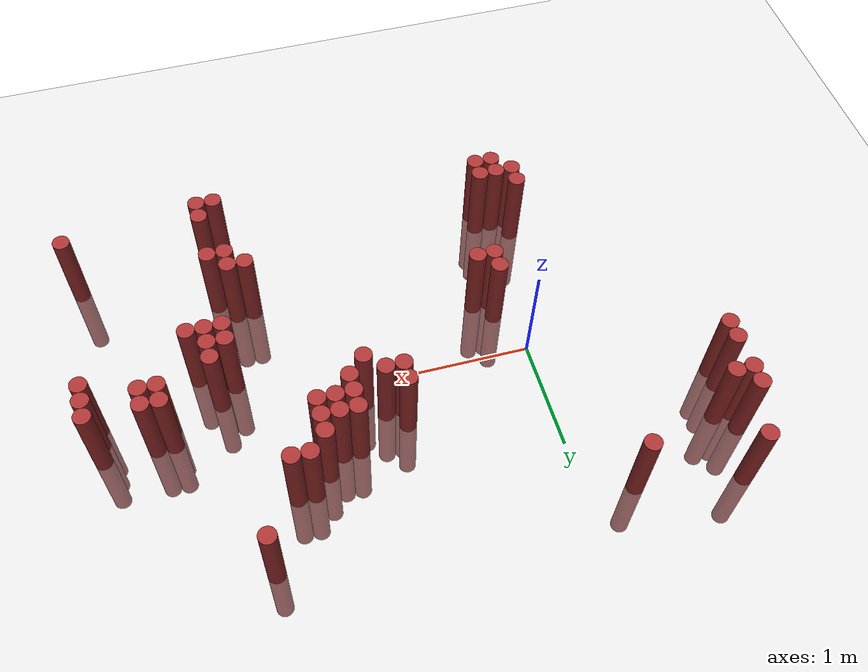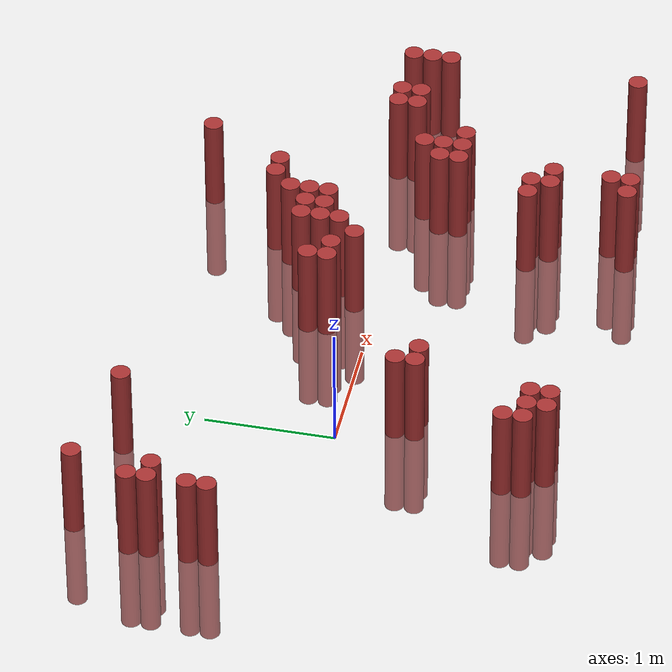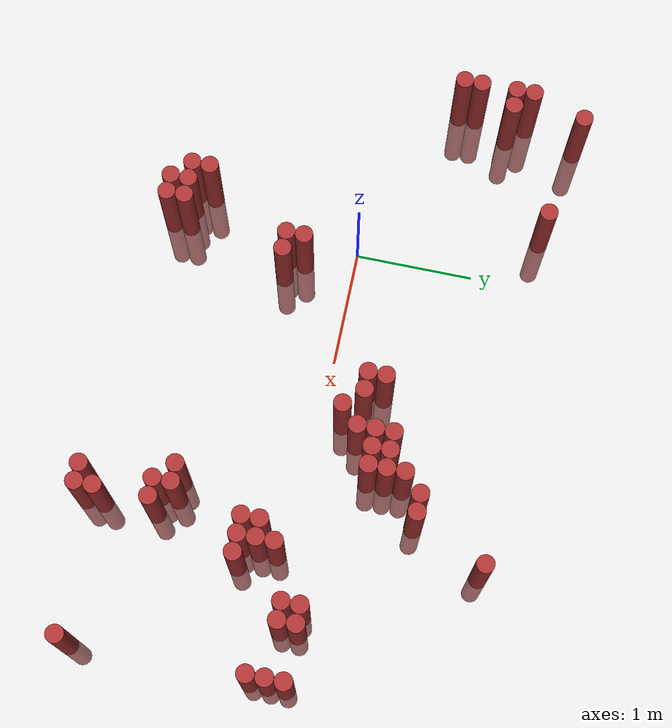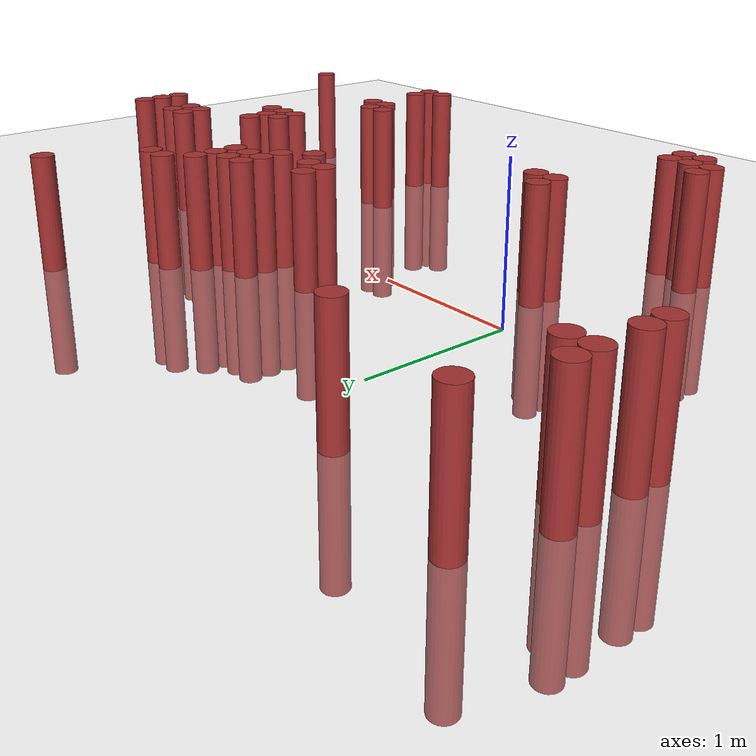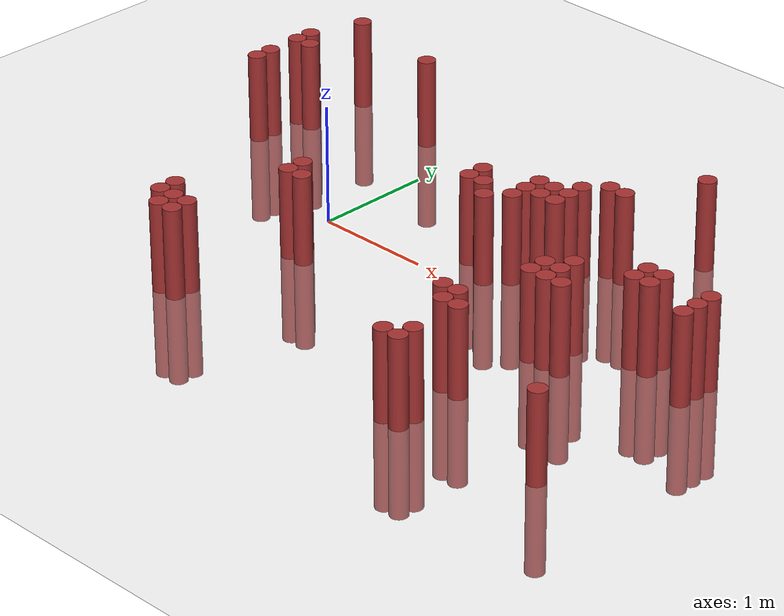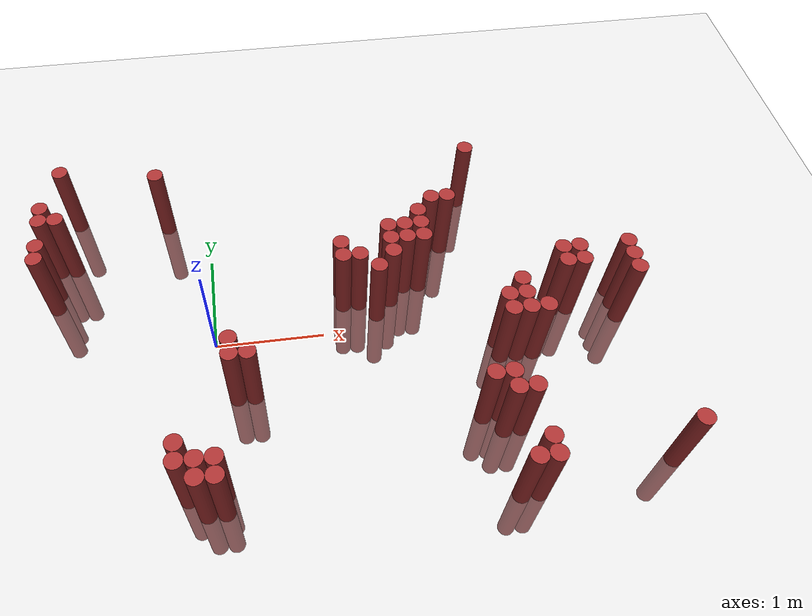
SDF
<sdf version="1.6">
 <world name="default">
  <model name="ground_plane">
   <static>1</static>
   <link name="link">
    <collision name="collision">
     <geometry><plane><normal>0 0 1</normal><size>100 100</size></plane></geometry>
     <surface><friction><ode><mu>100</mu><mu2>50</mu2></ode></friction></surface>
    </collision>
    <visual name="visual">
     <cast_shadows>0</cast_shadows>
     <geometry><plane><normal>0 0 1</normal><size>100 100</size></plane></geometry>
     <material>
      <script><uri>file://media/materials/scripts/gazebo.material</uri><name>Gazebo/Grey</name></script>
     </material>
    </visual>
   </link>
  </model>
  <model name="unit_cylinder_319">
   <static>1</static>
   <pose>-1.475000 0.625000 0.000000 0.000000 0.000000 0.000000</pose>
   <link name="link">
    <inertial>
     <mass>1</mass>
     <inertia><ixx>0.145833</ixx><ixy>0</ixy><ixz>0</ixz><iyy>0.145833</iyy><iyz>0</iyz><izz>0.125</izz></inertia>
    </inertial>
    <collision name="collision">
     <geometry><cylinder><radius>0.075000</radius><length>1.5</length></cylinder></geometry>
    </collision>
    <visual name="visual">
     <geometry><cylinder><radius>0.075000</radius><length>1.5</length></cylinder></geometry>
     <material>
      <ambient>0.648000 0.192000 0.192000 1</ambient>
      <diffuse>0.648000 0.192000 0.192000 1</diffuse>
     </material>
     <material>
      <script><name>Gazebo/Grey</name><uri>file://media/materials/scripts/gazebo.material</uri></script>
     </material>
    </visual>
   </link>
  </model>
  <model name="unit_cylinder_320">
   <static>1</static>
   <pose>-1.475000 0.775000 0.000000 0.000000 0.000000 0.000000</pose>
   <link name="link">
    <inertial>
     <mass>1</mass>
     <inertia><ixx>0.145833</ixx><ixy>0</ixy><ixz>0</ixz><iyy>0.145833</iyy><iyz>0</iyz><izz>0.125</izz></inertia>
    </inertial>
    <collision name="collision">
     <geometry><cylinder><radius>0.075000</radius><length>1.5</length></cylinder></geometry>
    </collision>
    <visual name="visual">
     <geometry><cylinder><radius>0.075000</radius><length>1.5</length></cylinder></geometry>
     <material>
      <ambient>0.648000 0.192000 0.192000 1</ambient>
      <diffuse>0.648000 0.192000 0.192000 1</diffuse>
     </material>
     <material>
      <script><name>Gazebo/Grey</name><uri>file://media/materials/scripts/gazebo.material</uri></script>
     </material>
    </visual>
   </link>
  </model>
  <model name="unit_cylinder_321">
   <static>1</static>
   <pose>-1.475000 1.075000 0.000000 0.000000 0.000000 0.000000</pose>
   <link name="link">
    <inertial>
     <mass>1</mass>
     <inertia><ixx>0.145833</ixx><ixy>0</ixy><ixz>0</ixz><iyy>0.145833</iyy><iyz>0</iyz><izz>0.125</izz></inertia>
    </inertial>
    <collision name="collision">
     <geometry><cylinder><radius>0.075000</radius><length>1.5</length></cylinder></geometry>
    </collision>
    <visual name="visual">
     <geometry><cylinder><radius>0.075000</radius><length>1.5</length></cylinder></geometry>
     <material>
      <ambient>0.648000 0.192000 0.192000 1</ambient>
      <diffuse>0.648000 0.192000 0.192000 1</diffuse>
     </material>
     <material>
      <script><name>Gazebo/Grey</name><uri>file://media/materials/scripts/gazebo.material</uri></script>
     </material>
    </visual>
   </link>
  </model>
  <model name="unit_cylinder_322">
   <static>1</static>
   <pose>-1.475000 1.225000 0.000000 0.000000 0.000000 0.000000</pose>
   <link name="link">
    <inertial>
     <mass>1</mass>
     <inertia><ixx>0.145833</ixx><ixy>0</ixy><ixz>0</ixz><iyy>0.145833</iyy><iyz>0</iyz><izz>0.125</izz></inertia>
    </inertial>
    <collision name="collision">
     <geometry><cylinder><radius>0.075000</radius><length>1.5</length></cylinder></geometry>
    </collision>
    <visual name="visual">
     <geometry><cylinder><radius>0.075000</radius><length>1.5</length></cylinder></geometry>
     <material>
      <ambient>0.648000 0.192000 0.192000 1</ambient>
      <diffuse>0.648000 0.192000 0.192000 1</diffuse>
     </material>
     <material>
      <script><name>Gazebo/Grey</name><uri>file://media/materials/scripts/gazebo.material</uri></script>
     </material>
    </visual>
   </link>
  </model>
  <model name="unit_cylinder_329">
   <static>1</static>
   <pose>-1.325000 1.075000 0.000000 0.000000 0.000000 0.000000</pose>
   <link name="link">
    <inertial>
     <mass>1</mass>
     <inertia><ixx>0.145833</ixx><ixy>0</ixy><ixz>0</ixz><iyy>0.145833</iyy><iyz>0</iyz><izz>0.125</izz></inertia>
    </inertial>
    <collision name="collision">
     <geometry><cylinder><radius>0.075000</radius><length>1.5</length></cylinder></geometry>
    </collision>
    <visual name="visual">
     <geometry><cylinder><radius>0.075000</radius><length>1.5</length></cylinder></geometry>
     <material>
      <ambient>0.648000 0.192000 0.192000 1</ambient>
      <diffuse>0.648000 0.192000 0.192000 1</diffuse>
     </material>
     <material>
      <script><name>Gazebo/Grey</name><uri>file://media/materials/scripts/gazebo.material</uri></script>
     </material>
    </visual>
   </link>
  </model>
  <model name="unit_cylinder_330">
   <static>1</static>
   <pose>-1.325000 1.675000 0.000000 0.000000 0.000000 0.000000</pose>
   <link name="link">
    <inertial>
     <mass>1</mass>
     <inertia><ixx>0.145833</ixx><ixy>0</ixy><ixz>0</ixz><iyy>0.145833</iyy><iyz>0</iyz><izz>0.125</izz></inertia>
    </inertial>
    <collision name="collision">
     <geometry><cylinder><radius>0.075000</radius><length>1.5</length></cylinder></geometry>
    </collision>
    <visual name="visual">
     <geometry><cylinder><radius>0.075000</radius><length>1.5</length></cylinder></geometry>
     <material>
      <ambient>0.648000 0.192000 0.192000 1</ambient>
      <diffuse>0.648000 0.192000 0.192000 1</diffuse>
     </material>
     <material>
      <script><name>Gazebo/Grey</name><uri>file://media/materials/scripts/gazebo.material</uri></script>
     </material>
    </visual>
   </link>
  </model>
  <model name="unit_cylinder_345">
   <static>1</static>
   <pose>-0.425000 1.525000 0.000000 0.000000 0.000000 0.000000</pose>
   <link name="link">
    <inertial>
     <mass>1</mass>
     <inertia><ixx>0.145833</ixx><ixy>0</ixy><ixz>0</ixz><iyy>0.145833</iyy><iyz>0</iyz><izz>0.125</izz></inertia>
    </inertial>
    <collision name="collision">
     <geometry><cylinder><radius>0.075000</radius><length>1.5</length></cylinder></geometry>
    </collision>
    <visual name="visual">
     <geometry><cylinder><radius>0.075000</radius><length>1.5</length></cylinder></geometry>
     <material>
      <ambient>0.648000 0.192000 0.192000 1</ambient>
      <diffuse>0.648000 0.192000 0.192000 1</diffuse>
     </material>
     <material>
      <script><name>Gazebo/Grey</name><uri>file://media/materials/scripts/gazebo.material</uri></script>
     </material>
    </visual>
   </link>
  </model>
  <model name="unit_cylinder_348">
   <static>1</static>
   <pose>-0.275000 -1.475000 0.000000 0.000000 0.000000 0.000000</pose>
   <link name="link">
    <inertial>
     <mass>1</mass>
     <inertia><ixx>0.145833</ixx><ixy>0</ixy><ixz>0</ixz><iyy>0.145833</iyy><iyz>0</iyz><izz>0.125</izz></inertia>
    </inertial>
    <collision name="collision">
     <geometry><cylinder><radius>0.075000</radius><length>1.5</length></cylinder></geometry>
    </collision>
    <visual name="visual">
     <geometry><cylinder><radius>0.075000</radius><length>1.5</length></cylinder></geometry>
     <material>
      <ambient>0.648000 0.192000 0.192000 1</ambient>
      <diffuse>0.648000 0.192000 0.192000 1</diffuse>
     </material>
     <material>
      <script><name>Gazebo/Grey</name><uri>file://media/materials/scripts/gazebo.material</uri></script>
     </material>
    </visual>
   </link>
  </model>
  <model name="unit_cylinder_349">
   <static>1</static>
   <pose>-0.275000 -1.325000 0.000000 0.000000 0.000000 0.000000</pose>
   <link name="link">
    <inertial>
     <mass>1</mass>
     <inertia><ixx>0.145833</ixx><ixy>0</ixy><ixz>0</ixz><iyy>0.145833</iyy><iyz>0</iyz><izz>0.125</izz></inertia>
    </inertial>
    <collision name="collision">
     <geometry><cylinder><radius>0.075000</radius><length>1.5</length></cylinder></geometry>
    </collision>
    <visual name="visual">
     <geometry><cylinder><radius>0.075000</radius><length>1.5</length></cylinder></geometry>
     <material>
      <ambient>0.648000 0.192000 0.192000 1</ambient>
      <diffuse>0.648000 0.192000 0.192000 1</diffuse>
     </material>
     <material>
      <script><name>Gazebo/Grey</name><uri>file://media/materials/scripts/gazebo.material</uri></script>
     </material>
    </visual>
   </link>
  </model>
  <model name="unit_cylinder_352">
   <static>1</static>
   <pose>-0.125000 -1.625000 0.000000 0.000000 0.000000 0.000000</pose>
   <link name="link">
    <inertial>
     <mass>1</mass>
     <inertia><ixx>0.145833</ixx><ixy>0</ixy><ixz>0</ixz><iyy>0.145833</iyy><iyz>0</iyz><izz>0.125</izz></inertia>
    </inertial>
    <collision name="collision">
     <geometry><cylinder><radius>0.075000</radius><length>1.5</length></cylinder></geometry>
    </collision>
    <visual name="visual">
     <geometry><cylinder><radius>0.075000</radius><length>1.5</length></cylinder></geometry>
     <material>
      <ambient>0.648000 0.192000 0.192000 1</ambient>
      <diffuse>0.648000 0.192000 0.192000 1</diffuse>
     </material>
     <material>
      <script><name>Gazebo/Grey</name><uri>file://media/materials/scripts/gazebo.material</uri></script>
     </material>
    </visual>
   </link>
  </model>
  <model name="unit_cylinder_353">
   <static>1</static>
   <pose>-0.125000 -1.475000 0.000000 0.000000 0.000000 0.000000</pose>
   <link name="link">
    <inertial>
     <mass>1</mass>
     <inertia><ixx>0.145833</ixx><ixy>0</ixy><ixz>0</ixz><iyy>0.145833</iyy><iyz>0</iyz><izz>0.125</izz></inertia>
    </inertial>
    <collision name="collision">
     <geometry><cylinder><radius>0.075000</radius><length>1.5</length></cylinder></geometry>
    </collision>
    <visual name="visual">
     <geometry><cylinder><radius>0.075000</radius><length>1.5</length></cylinder></geometry>
     <material>
      <ambient>0.648000 0.192000 0.192000 1</ambient>
      <diffuse>0.648000 0.192000 0.192000 1</diffuse>
     </material>
     <material>
      <script><name>Gazebo/Grey</name><uri>file://media/materials/scripts/gazebo.material</uri></script>
     </material>
    </visual>
   </link>
  </model>
  <model name="unit_cylinder_359">
   <static>1</static>
   <pose>0.025000 -1.625000 0.000000 0.000000 0.000000 0.000000</pose>
   <link name="link">
    <inertial>
     <mass>1</mass>
     <inertia><ixx>0.145833</ixx><ixy>0</ixy><ixz>0</ixz><iyy>0.145833</iyy><iyz>0</iyz><izz>0.125</izz></inertia>
    </inertial>
    <collision name="collision">
     <geometry><cylinder><radius>0.075000</radius><length>1.5</length></cylinder></geometry>
    </collision>
    <visual name="visual">
     <geometry><cylinder><radius>0.075000</radius><length>1.5</length></cylinder></geometry>
     <material>
      <ambient>0.648000 0.192000 0.192000 1</ambient>
      <diffuse>0.648000 0.192000 0.192000 1</diffuse>
     </material>
     <material>
      <script><name>Gazebo/Grey</name><uri>file://media/materials/scripts/gazebo.material</uri></script>
     </material>
    </visual>
   </link>
  </model>
  <model name="unit_cylinder_360">
   <static>1</static>
   <pose>0.025000 -1.475000 0.000000 0.000000 0.000000 0.000000</pose>
   <link name="link">
    <inertial>
     <mass>1</mass>
     <inertia><ixx>0.145833</ixx><ixy>0</ixy><ixz>0</ixz><iyy>0.145833</iyy><iyz>0</iyz><izz>0.125</izz></inertia>
    </inertial>
    <collision name="collision">
     <geometry><cylinder><radius>0.075000</radius><length>1.5</length></cylinder></geometry>
    </collision>
    <visual name="visual">
     <geometry><cylinder><radius>0.075000</radius><length>1.5</length></cylinder></geometry>
     <material>
      <ambient>0.648000 0.192000 0.192000 1</ambient>
      <diffuse>0.648000 0.192000 0.192000 1</diffuse>
     </material>
     <material>
      <script><name>Gazebo/Grey</name><uri>file://media/materials/scripts/gazebo.material</uri></script>
     </material>
    </visual>
   </link>
  </model>
  <model name="unit_cylinder_367">
   <static>1</static>
   <pose>0.175000 -0.575000 0.000000 0.000000 0.000000 0.000000</pose>
   <link name="link">
    <inertial>
     <mass>1</mass>
     <inertia><ixx>0.145833</ixx><ixy>0</ixy><ixz>0</ixz><iyy>0.145833</iyy><iyz>0</iyz><izz>0.125</izz></inertia>
    </inertial>
    <collision name="collision">
     <geometry><cylinder><radius>0.075000</radius><length>1.5</length></cylinder></geometry>
    </collision>
    <visual name="visual">
     <geometry><cylinder><radius>0.075000</radius><length>1.5</length></cylinder></geometry>
     <material>
      <ambient>0.648000 0.192000 0.192000 1</ambient>
      <diffuse>0.648000 0.192000 0.192000 1</diffuse>
     </material>
     <material>
      <script><name>Gazebo/Grey</name><uri>file://media/materials/scripts/gazebo.material</uri></script>
     </material>
    </visual>
   </link>
  </model>
  <model name="unit_cylinder_368">
   <static>1</static>
   <pose>0.175000 -0.425000 0.000000 0.000000 0.000000 0.000000</pose>
   <link name="link">
    <inertial>
     <mass>1</mass>
     <inertia><ixx>0.145833</ixx><ixy>0</ixy><ixz>0</ixz><iyy>0.145833</iyy><iyz>0</iyz><izz>0.125</izz></inertia>
    </inertial>
    <collision name="collision">
     <geometry><cylinder><radius>0.075000</radius><length>1.5</length></cylinder></geometry>
    </collision>
    <visual name="visual">
     <geometry><cylinder><radius>0.075000</radius><length>1.5</length></cylinder></geometry>
     <material>
      <ambient>0.648000 0.192000 0.192000 1</ambient>
      <diffuse>0.648000 0.192000 0.192000 1</diffuse>
     </material>
     <material>
      <script><name>Gazebo/Grey</name><uri>file://media/materials/scripts/gazebo.material</uri></script>
     </material>
    </visual>
   </link>
  </model>
  <model name="unit_cylinder_374">
   <static>1</static>
   <pose>0.325000 -0.575000 0.000000 0.000000 0.000000 0.000000</pose>
   <link name="link">
    <inertial>
     <mass>1</mass>
     <inertia><ixx>0.145833</ixx><ixy>0</ixy><ixz>0</ixz><iyy>0.145833</iyy><iyz>0</iyz><izz>0.125</izz></inertia>
    </inertial>
    <collision name="collision">
     <geometry><cylinder><radius>0.075000</radius><length>1.5</length></cylinder></geometry>
    </collision>
    <visual name="visual">
     <geometry><cylinder><radius>0.075000</radius><length>1.5</length></cylinder></geometry>
     <material>
      <ambient>0.648000 0.192000 0.192000 1</ambient>
      <diffuse>0.648000 0.192000 0.192000 1</diffuse>
     </material>
     <material>
      <script><name>Gazebo/Grey</name><uri>file://media/materials/scripts/gazebo.material</uri></script>
     </material>
    </visual>
   </link>
  </model>
  <model name="unit_cylinder_382">
   <static>1</static>
   <pose>1.225000 0.325000 0.000000 0.000000 0.000000 0.000000</pose>
   <link name="link">
    <inertial>
     <mass>1</mass>
     <inertia><ixx>0.145833</ixx><ixy>0</ixy><ixz>0</ixz><iyy>0.145833</iyy><iyz>0</iyz><izz>0.125</izz></inertia>
    </inertial>
    <collision name="collision">
     <geometry><cylinder><radius>0.075000</radius><length>1.5</length></cylinder></geometry>
    </collision>
    <visual name="visual">
     <geometry><cylinder><radius>0.075000</radius><length>1.5</length></cylinder></geometry>
     <material>
      <ambient>0.648000 0.192000 0.192000 1</ambient>
      <diffuse>0.648000 0.192000 0.192000 1</diffuse>
     </material>
     <material>
      <script><name>Gazebo/Grey</name><uri>file://media/materials/scripts/gazebo.material</uri></script>
     </material>
    </visual>
   </link>
  </model>
  <model name="unit_cylinder_383">
   <static>1</static>
   <pose>1.225000 0.475000 0.000000 0.000000 0.000000 0.000000</pose>
   <link name="link">
    <inertial>
     <mass>1</mass>
     <inertia><ixx>0.145833</ixx><ixy>0</ixy><ixz>0</ixz><iyy>0.145833</iyy><iyz>0</iyz><izz>0.125</izz></inertia>
    </inertial>
    <collision name="collision">
     <geometry><cylinder><radius>0.075000</radius><length>1.5</length></cylinder></geometry>
    </collision>
    <visual name="visual">
     <geometry><cylinder><radius>0.075000</radius><length>1.5</length></cylinder></geometry>
     <material>
      <ambient>0.648000 0.192000 0.192000 1</ambient>
      <diffuse>0.648000 0.192000 0.192000 1</diffuse>
     </material>
     <material>
      <script><name>Gazebo/Grey</name><uri>file://media/materials/scripts/gazebo.material</uri></script>
     </material>
    </visual>
   </link>
  </model>
  <model name="unit_cylinder_386">
   <static>1</static>
   <pose>1.375000 0.325000 0.000000 0.000000 0.000000 0.000000</pose>
   <link name="link">
    <inertial>
     <mass>1</mass>
     <inertia><ixx>0.145833</ixx><ixy>0</ixy><ixz>0</ixz><iyy>0.145833</iyy><iyz>0</iyz><izz>0.125</izz></inertia>
    </inertial>
    <collision name="collision">
     <geometry><cylinder><radius>0.075000</radius><length>1.5</length></cylinder></geometry>
    </collision>
    <visual name="visual">
     <geometry><cylinder><radius>0.075000</radius><length>1.5</length></cylinder></geometry>
     <material>
      <ambient>0.648000 0.192000 0.192000 1</ambient>
      <diffuse>0.648000 0.192000 0.192000 1</diffuse>
     </material>
     <material>
      <script><name>Gazebo/Grey</name><uri>file://media/materials/scripts/gazebo.material</uri></script>
     </material>
    </visual>
   </link>
  </model>
  <model name="unit_cylinder_388">
   <static>1</static>
   <pose>1.525000 0.175000 0.000000 0.000000 0.000000 0.000000</pose>
   <link name="link">
    <inertial>
     <mass>1</mass>
     <inertia><ixx>0.145833</ixx><ixy>0</ixy><ixz>0</ixz><iyy>0.145833</iyy><iyz>0</iyz><izz>0.125</izz></inertia>
    </inertial>
    <collision name="collision">
     <geometry><cylinder><radius>0.075000</radius><length>1.5</length></cylinder></geometry>
    </collision>
    <visual name="visual">
     <geometry><cylinder><radius>0.075000</radius><length>1.5</length></cylinder></geometry>
     <material>
      <ambient>0.648000 0.192000 0.192000 1</ambient>
      <diffuse>0.648000 0.192000 0.192000 1</diffuse>
     </material>
     <material>
      <script><name>Gazebo/Grey</name><uri>file://media/materials/scripts/gazebo.material</uri></script>
     </material>
    </visual>
   </link>
  </model>
  <model name="unit_cylinder_389">
   <static>1</static>
   <pose>1.675000 0.325000 0.000000 0.000000 0.000000 0.000000</pose>
   <link name="link">
    <inertial>
     <mass>1</mass>
     <inertia><ixx>0.145833</ixx><ixy>0</ixy><ixz>0</ixz><iyy>0.145833</iyy><iyz>0</iyz><izz>0.125</izz></inertia>
    </inertial>
    <collision name="collision">
     <geometry><cylinder><radius>0.075000</radius><length>1.5</length></cylinder></geometry>
    </collision>
    <visual name="visual">
     <geometry><cylinder><radius>0.075000</radius><length>1.5</length></cylinder></geometry>
     <material>
      <ambient>0.648000 0.192000 0.192000 1</ambient>
      <diffuse>0.648000 0.192000 0.192000 1</diffuse>
     </material>
     <material>
      <script><name>Gazebo/Grey</name><uri>file://media/materials/scripts/gazebo.material</uri></script>
     </material>
    </visual>
   </link>
  </model>
  <model name="unit_cylinder_390">
   <static>1</static>
   <pose>1.675000 0.475000 0.000000 0.000000 0.000000 0.000000</pose>
   <link name="link">
    <inertial>
     <mass>1</mass>
     <inertia><ixx>0.145833</ixx><ixy>0</ixy><ixz>0</ixz><iyy>0.145833</iyy><iyz>0</iyz><izz>0.125</izz></inertia>
    </inertial>
    <collision name="collision">
     <geometry><cylinder><radius>0.075000</radius><length>1.5</length></cylinder></geometry>
    </collision>
    <visual name="visual">
     <geometry><cylinder><radius>0.075000</radius><length>1.5</length></cylinder></geometry>
     <material>
      <ambient>0.648000 0.192000 0.192000 1</ambient>
      <diffuse>0.648000 0.192000 0.192000 1</diffuse>
     </material>
     <material>
      <script><name>Gazebo/Grey</name><uri>file://media/materials/scripts/gazebo.material</uri></script>
     </material>
    </visual>
   </link>
  </model>
  <model name="unit_cylinder_391">
   <static>1</static>
   <pose>1.675000 0.625000 0.000000 0.000000 0.000000 0.000000</pose>
   <link name="link">
    <inertial>
     <mass>1</mass>
     <inertia><ixx>0.145833</ixx><ixy>0</ixy><ixz>0</ixz><iyy>0.145833</iyy><iyz>0</iyz><izz>0.125</izz></inertia>
    </inertial>
    <collision name="collision">
     <geometry><cylinder><radius>0.075000</radius><length>1.5</length></cylinder></geometry>
    </collision>
    <visual name="visual">
     <geometry><cylinder><radius>0.075000</radius><length>1.5</length></cylinder></geometry>
     <material>
      <ambient>0.648000 0.192000 0.192000 1</ambient>
      <diffuse>0.648000 0.192000 0.192000 1</diffuse>
     </material>
     <material>
      <script><name>Gazebo/Grey</name><uri>file://media/materials/scripts/gazebo.material</uri></script>
     </material>
    </visual>
   </link>
  </model>
  <model name="unit_cylinder_394">
   <static>1</static>
   <pose>1.825000 0.475000 0.000000 0.000000 0.000000 0.000000</pose>
   <link name="link">
    <inertial>
     <mass>1</mass>
     <inertia><ixx>0.145833</ixx><ixy>0</ixy><ixz>0</ixz><iyy>0.145833</iyy><iyz>0</iyz><izz>0.125</izz></inertia>
    </inertial>
    <collision name="collision">
     <geometry><cylinder><radius>0.075000</radius><length>1.5</length></cylinder></geometry>
    </collision>
    <visual name="visual">
     <geometry><cylinder><radius>0.075000</radius><length>1.5</length></cylinder></geometry>
     <material>
      <ambient>0.648000 0.192000 0.192000 1</ambient>
      <diffuse>0.648000 0.192000 0.192000 1</diffuse>
     </material>
     <material>
      <script><name>Gazebo/Grey</name><uri>file://media/materials/scripts/gazebo.material</uri></script>
     </material>
    </visual>
   </link>
  </model>
  <model name="unit_cylinder_395">
   <static>1</static>
   <pose>1.825000 0.625000 0.000000 0.000000 0.000000 0.000000</pose>
   <link name="link">
    <inertial>
     <mass>1</mass>
     <inertia><ixx>0.145833</ixx><ixy>0</ixy><ixz>0</ixz><iyy>0.145833</iyy><iyz>0</iyz><izz>0.125</izz></inertia>
    </inertial>
    <collision name="collision">
     <geometry><cylinder><radius>0.075000</radius><length>1.5</length></cylinder></geometry>
    </collision>
    <visual name="visual">
     <geometry><cylinder><radius>0.075000</radius><length>1.5</length></cylinder></geometry>
     <material>
      <ambient>0.648000 0.192000 0.192000 1</ambient>
      <diffuse>0.648000 0.192000 0.192000 1</diffuse>
     </material>
     <material>
      <script><name>Gazebo/Grey</name><uri>file://media/materials/scripts/gazebo.material</uri></script>
     </material>
    </visual>
   </link>
  </model>
  <model name="unit_cylinder_398">
   <static>1</static>
   <pose>1.975000 0.475000 0.000000 0.000000 0.000000 0.000000</pose>
   <link name="link">
    <inertial>
     <mass>1</mass>
     <inertia><ixx>0.145833</ixx><ixy>0</ixy><ixz>0</ixz><iyy>0.145833</iyy><iyz>0</iyz><izz>0.125</izz></inertia>
    </inertial>
    <collision name="collision">
     <geometry><cylinder><radius>0.075000</radius><length>1.5</length></cylinder></geometry>
    </collision>
    <visual name="visual">
     <geometry><cylinder><radius>0.075000</radius><length>1.5</length></cylinder></geometry>
     <material>
      <ambient>0.648000 0.192000 0.192000 1</ambient>
      <diffuse>0.648000 0.192000 0.192000 1</diffuse>
     </material>
     <material>
      <script><name>Gazebo/Grey</name><uri>file://media/materials/scripts/gazebo.material</uri></script>
     </material>
    </visual>
   </link>
  </model>
  <model name="unit_cylinder_399">
   <static>1</static>
   <pose>1.975000 0.625000 0.000000 0.000000 0.000000 0.000000</pose>
   <link name="link">
    <inertial>
     <mass>1</mass>
     <inertia><ixx>0.145833</ixx><ixy>0</ixy><ixz>0</ixz><iyy>0.145833</iyy><iyz>0</iyz><izz>0.125</izz></inertia>
    </inertial>
    <collision name="collision">
     <geometry><cylinder><radius>0.075000</radius><length>1.5</length></cylinder></geometry>
    </collision>
    <visual name="visual">
     <geometry><cylinder><radius>0.075000</radius><length>1.5</length></cylinder></geometry>
     <material>
      <ambient>0.648000 0.192000 0.192000 1</ambient>
      <diffuse>0.648000 0.192000 0.192000 1</diffuse>
     </material>
     <material>
      <script><name>Gazebo/Grey</name><uri>file://media/materials/scripts/gazebo.material</uri></script>
     </material>
    </visual>
   </link>
  </model>
  <model name="unit_cylinder_400">
   <static>1</static>
   <pose>1.975000 0.775000 0.000000 0.000000 0.000000 0.000000</pose>
   <link name="link">
    <inertial>
     <mass>1</mass>
     <inertia><ixx>0.145833</ixx><ixy>0</ixy><ixz>0</ixz><iyy>0.145833</iyy><iyz>0</iyz><izz>0.125</izz></inertia>
    </inertial>
    <collision name="collision">
     <geometry><cylinder><radius>0.075000</radius><length>1.5</length></cylinder></geometry>
    </collision>
    <visual name="visual">
     <geometry><cylinder><radius>0.075000</radius><length>1.5</length></cylinder></geometry>
     <material>
      <ambient>0.648000 0.192000 0.192000 1</ambient>
      <diffuse>0.648000 0.192000 0.192000 1</diffuse>
     </material>
     <material>
      <script><name>Gazebo/Grey</name><uri>file://media/materials/scripts/gazebo.material</uri></script>
     </material>
    </visual>
   </link>
  </model>
  <model name="unit_cylinder_403">
   <static>1</static>
   <pose>2.125000 0.925000 0.000000 0.000000 0.000000 0.000000</pose>
   <link name="link">
    <inertial>
     <mass>1</mass>
     <inertia><ixx>0.145833</ixx><ixy>0</ixy><ixz>0</ixz><iyy>0.145833</iyy><iyz>0</iyz><izz>0.125</izz></inertia>
    </inertial>
    <collision name="collision">
     <geometry><cylinder><radius>0.075000</radius><length>1.5</length></cylinder></geometry>
    </collision>
    <visual name="visual">
     <geometry><cylinder><radius>0.075000</radius><length>1.5</length></cylinder></geometry>
     <material>
      <ambient>0.648000 0.192000 0.192000 1</ambient>
      <diffuse>0.648000 0.192000 0.192000 1</diffuse>
     </material>
     <material>
      <script><name>Gazebo/Grey</name><uri>file://media/materials/scripts/gazebo.material</uri></script>
     </material>
    </visual>
   </link>
  </model>
  <model name="unit_cylinder_405">
   <static>1</static>
   <pose>2.275000 -1.025000 0.000000 0.000000 0.000000 0.000000</pose>
   <link name="link">
    <inertial>
     <mass>1</mass>
     <inertia><ixx>0.145833</ixx><ixy>0</ixy><ixz>0</ixz><iyy>0.145833</iyy><iyz>0</iyz><izz>0.125</izz></inertia>
    </inertial>
    <collision name="collision">
     <geometry><cylinder><radius>0.075000</radius><length>1.5</length></cylinder></geometry>
    </collision>
    <visual name="visual">
     <geometry><cylinder><radius>0.075000</radius><length>1.5</length></cylinder></geometry>
     <material>
      <ambient>0.648000 0.192000 0.192000 1</ambient>
      <diffuse>0.648000 0.192000 0.192000 1</diffuse>
     </material>
     <material>
      <script><name>Gazebo/Grey</name><uri>file://media/materials/scripts/gazebo.material</uri></script>
     </material>
    </visual>
   </link>
  </model>
  <model name="unit_cylinder_406">
   <static>1</static>
   <pose>2.275000 0.925000 0.000000 0.000000 0.000000 0.000000</pose>
   <link name="link">
    <inertial>
     <mass>1</mass>
     <inertia><ixx>0.145833</ixx><ixy>0</ixy><ixz>0</ixz><iyy>0.145833</iyy><iyz>0</iyz><izz>0.125</izz></inertia>
    </inertial>
    <collision name="collision">
     <geometry><cylinder><radius>0.075000</radius><length>1.5</length></cylinder></geometry>
    </collision>
    <visual name="visual">
     <geometry><cylinder><radius>0.075000</radius><length>1.5</length></cylinder></geometry>
     <material>
      <ambient>0.648000 0.192000 0.192000 1</ambient>
      <diffuse>0.648000 0.192000 0.192000 1</diffuse>
     </material>
     <material>
      <script><name>Gazebo/Grey</name><uri>file://media/materials/scripts/gazebo.material</uri></script>
     </material>
    </visual>
   </link>
  </model>
  <model name="unit_cylinder_407">
   <static>1</static>
   <pose>2.425000 -1.775000 0.000000 0.000000 0.000000 0.000000</pose>
   <link name="link">
    <inertial>
     <mass>1</mass>
     <inertia><ixx>0.145833</ixx><ixy>0</ixy><ixz>0</ixz><iyy>0.145833</iyy><iyz>0</iyz><izz>0.125</izz></inertia>
    </inertial>
    <collision name="collision">
     <geometry><cylinder><radius>0.075000</radius><length>1.5</length></cylinder></geometry>
    </collision>
    <visual name="visual">
     <geometry><cylinder><radius>0.075000</radius><length>1.5</length></cylinder></geometry>
     <material>
      <ambient>0.648000 0.192000 0.192000 1</ambient>
      <diffuse>0.648000 0.192000 0.192000 1</diffuse>
     </material>
     <material>
      <script><name>Gazebo/Grey</name><uri>file://media/materials/scripts/gazebo.material</uri></script>
     </material>
    </visual>
   </link>
  </model>
  <model name="unit_cylinder_408">
   <static>1</static>
   <pose>2.425000 -1.175000 0.000000 0.000000 0.000000 0.000000</pose>
   <link name="link">
    <inertial>
     <mass>1</mass>
     <inertia><ixx>0.145833</ixx><ixy>0</ixy><ixz>0</ixz><iyy>0.145833</iyy><iyz>0</iyz><izz>0.125</izz></inertia>
    </inertial>
    <collision name="collision">
     <geometry><cylinder><radius>0.075000</radius><length>1.5</length></cylinder></geometry>
    </collision>
    <visual name="visual">
     <geometry><cylinder><radius>0.075000</radius><length>1.5</length></cylinder></geometry>
     <material>
      <ambient>0.648000 0.192000 0.192000 1</ambient>
      <diffuse>0.648000 0.192000 0.192000 1</diffuse>
     </material>
     <material>
      <script><name>Gazebo/Grey</name><uri>file://media/materials/scripts/gazebo.material</uri></script>
     </material>
    </visual>
   </link>
  </model>
  <model name="unit_cylinder_409">
   <static>1</static>
   <pose>2.425000 -1.025000 0.000000 0.000000 0.000000 0.000000</pose>
   <link name="link">
    <inertial>
     <mass>1</mass>
     <inertia><ixx>0.145833</ixx><ixy>0</ixy><ixz>0</ixz><iyy>0.145833</iyy><iyz>0</iyz><izz>0.125</izz></inertia>
    </inertial>
    <collision name="collision">
     <geometry><cylinder><radius>0.075000</radius><length>1.5</length></cylinder></geometry>
    </collision>
    <visual name="visual">
     <geometry><cylinder><radius>0.075000</radius><length>1.5</length></cylinder></geometry>
     <material>
      <ambient>0.648000 0.192000 0.192000 1</ambient>
      <diffuse>0.648000 0.192000 0.192000 1</diffuse>
     </material>
     <material>
      <script><name>Gazebo/Grey</name><uri>file://media/materials/scripts/gazebo.material</uri></script>
     </material>
    </visual>
   </link>
  </model>
  <model name="unit_cylinder_412">
   <static>1</static>
   <pose>2.575000 -1.775000 0.000000 0.000000 0.000000 0.000000</pose>
   <link name="link">
    <inertial>
     <mass>1</mass>
     <inertia><ixx>0.145833</ixx><ixy>0</ixy><ixz>0</ixz><iyy>0.145833</iyy><iyz>0</iyz><izz>0.125</izz></inertia>
    </inertial>
    <collision name="collision">
     <geometry><cylinder><radius>0.075000</radius><length>1.5</length></cylinder></geometry>
    </collision>
    <visual name="visual">
     <geometry><cylinder><radius>0.075000</radius><length>1.5</length></cylinder></geometry>
     <material>
      <ambient>0.648000 0.192000 0.192000 1</ambient>
      <diffuse>0.648000 0.192000 0.192000 1</diffuse>
     </material>
     <material>
      <script><name>Gazebo/Grey</name><uri>file://media/materials/scripts/gazebo.material</uri></script>
     </material>
    </visual>
   </link>
  </model>
  <model name="unit_cylinder_413">
   <static>1</static>
   <pose>2.575000 -1.625000 0.000000 0.000000 0.000000 0.000000</pose>
   <link name="link">
    <inertial>
     <mass>1</mass>
     <inertia><ixx>0.145833</ixx><ixy>0</ixy><ixz>0</ixz><iyy>0.145833</iyy><iyz>0</iyz><izz>0.125</izz></inertia>
    </inertial>
    <collision name="collision">
     <geometry><cylinder><radius>0.075000</radius><length>1.5</length></cylinder></geometry>
    </collision>
    <visual name="visual">
     <geometry><cylinder><radius>0.075000</radius><length>1.5</length></cylinder></geometry>
     <material>
      <ambient>0.648000 0.192000 0.192000 1</ambient>
      <diffuse>0.648000 0.192000 0.192000 1</diffuse>
     </material>
     <material>
      <script><name>Gazebo/Grey</name><uri>file://media/materials/scripts/gazebo.material</uri></script>
     </material>
    </visual>
   </link>
  </model>
  <model name="unit_cylinder_414">
   <static>1</static>
   <pose>2.575000 -1.175000 0.000000 0.000000 0.000000 0.000000</pose>
   <link name="link">
    <inertial>
     <mass>1</mass>
     <inertia><ixx>0.145833</ixx><ixy>0</ixy><ixz>0</ixz><iyy>0.145833</iyy><iyz>0</iyz><izz>0.125</izz></inertia>
    </inertial>
    <collision name="collision">
     <geometry><cylinder><radius>0.075000</radius><length>1.5</length></cylinder></geometry>
    </collision>
    <visual name="visual">
     <geometry><cylinder><radius>0.075000</radius><length>1.5</length></cylinder></geometry>
     <material>
      <ambient>0.648000 0.192000 0.192000 1</ambient>
      <diffuse>0.648000 0.192000 0.192000 1</diffuse>
     </material>
     <material>
      <script><name>Gazebo/Grey</name><uri>file://media/materials/scripts/gazebo.material</uri></script>
     </material>
    </visual>
   </link>
  </model>
  <model name="unit_cylinder_415">
   <static>1</static>
   <pose>2.575000 -0.425000 0.000000 0.000000 0.000000 0.000000</pose>
   <link name="link">
    <inertial>
     <mass>1</mass>
     <inertia><ixx>0.145833</ixx><ixy>0</ixy><ixz>0</ixz><iyy>0.145833</iyy><iyz>0</iyz><izz>0.125</izz></inertia>
    </inertial>
    <collision name="collision">
     <geometry><cylinder><radius>0.075000</radius><length>1.5</length></cylinder></geometry>
    </collision>
    <visual name="visual">
     <geometry><cylinder><radius>0.075000</radius><length>1.5</length></cylinder></geometry>
     <material>
      <ambient>0.648000 0.192000 0.192000 1</ambient>
      <diffuse>0.648000 0.192000 0.192000 1</diffuse>
     </material>
     <material>
      <script><name>Gazebo/Grey</name><uri>file://media/materials/scripts/gazebo.material</uri></script>
     </material>
    </visual>
   </link>
  </model>
  <model name="unit_cylinder_416">
   <static>1</static>
   <pose>2.575000 -0.275000 0.000000 0.000000 0.000000 0.000000</pose>
   <link name="link">
    <inertial>
     <mass>1</mass>
     <inertia><ixx>0.145833</ixx><ixy>0</ixy><ixz>0</ixz><iyy>0.145833</iyy><iyz>0</iyz><izz>0.125</izz></inertia>
    </inertial>
    <collision name="collision">
     <geometry><cylinder><radius>0.075000</radius><length>1.5</length></cylinder></geometry>
    </collision>
    <visual name="visual">
     <geometry><cylinder><radius>0.075000</radius><length>1.5</length></cylinder></geometry>
     <material>
      <ambient>0.648000 0.192000 0.192000 1</ambient>
      <diffuse>0.648000 0.192000 0.192000 1</diffuse>
     </material>
     <material>
      <script><name>Gazebo/Grey</name><uri>file://media/materials/scripts/gazebo.material</uri></script>
     </material>
    </visual>
   </link>
  </model>
  <model name="unit_cylinder_417">
   <static>1</static>
   <pose>2.575000 1.525000 0.000000 0.000000 0.000000 0.000000</pose>
   <link name="link">
    <inertial>
     <mass>1</mass>
     <inertia><ixx>0.145833</ixx><ixy>0</ixy><ixz>0</ixz><iyy>0.145833</iyy><iyz>0</iyz><izz>0.125</izz></inertia>
    </inertial>
    <collision name="collision">
     <geometry><cylinder><radius>0.075000</radius><length>1.5</length></cylinder></geometry>
    </collision>
    <visual name="visual">
     <geometry><cylinder><radius>0.075000</radius><length>1.5</length></cylinder></geometry>
     <material>
      <ambient>0.648000 0.192000 0.192000 1</ambient>
      <diffuse>0.648000 0.192000 0.192000 1</diffuse>
     </material>
     <material>
      <script><name>Gazebo/Grey</name><uri>file://media/materials/scripts/gazebo.material</uri></script>
     </material>
    </visual>
   </link>
  </model>
  <model name="unit_cylinder_422">
   <static>1</static>
   <pose>2.725000 -0.425000 0.000000 0.000000 0.000000 0.000000</pose>
   <link name="link">
    <inertial>
     <mass>1</mass>
     <inertia><ixx>0.145833</ixx><ixy>0</ixy><ixz>0</ixz><iyy>0.145833</iyy><iyz>0</iyz><izz>0.125</izz></inertia>
    </inertial>
    <collision name="collision">
     <geometry><cylinder><radius>0.075000</radius><length>1.5</length></cylinder></geometry>
    </collision>
    <visual name="visual">
     <geometry><cylinder><radius>0.075000</radius><length>1.5</length></cylinder></geometry>
     <material>
      <ambient>0.648000 0.192000 0.192000 1</ambient>
      <diffuse>0.648000 0.192000 0.192000 1</diffuse>
     </material>
     <material>
      <script><name>Gazebo/Grey</name><uri>file://media/materials/scripts/gazebo.material</uri></script>
     </material>
    </visual>
   </link>
  </model>
  <model name="unit_cylinder_423">
   <static>1</static>
   <pose>2.725000 -0.275000 0.000000 0.000000 0.000000 0.000000</pose>
   <link name="link">
    <inertial>
     <mass>1</mass>
     <inertia><ixx>0.145833</ixx><ixy>0</ixy><ixz>0</ixz><iyy>0.145833</iyy><iyz>0</iyz><izz>0.125</izz></inertia>
    </inertial>
    <collision name="collision">
     <geometry><cylinder><radius>0.075000</radius><length>1.5</length></cylinder></geometry>
    </collision>
    <visual name="visual">
     <geometry><cylinder><radius>0.075000</radius><length>1.5</length></cylinder></geometry>
     <material>
      <ambient>0.648000 0.192000 0.192000 1</ambient>
      <diffuse>0.648000 0.192000 0.192000 1</diffuse>
     </material>
     <material>
      <script><name>Gazebo/Grey</name><uri>file://media/materials/scripts/gazebo.material</uri></script>
     </material>
    </visual>
   </link>
  </model>
  <model name="unit_cylinder_424">
   <static>1</static>
   <pose>2.725000 -0.125000 0.000000 0.000000 0.000000 0.000000</pose>
   <link name="link">
    <inertial>
     <mass>1</mass>
     <inertia><ixx>0.145833</ixx><ixy>0</ixy><ixz>0</ixz><iyy>0.145833</iyy><iyz>0</iyz><izz>0.125</izz></inertia>
    </inertial>
    <collision name="collision">
     <geometry><cylinder><radius>0.075000</radius><length>1.5</length></cylinder></geometry>
    </collision>
    <visual name="visual">
     <geometry><cylinder><radius>0.075000</radius><length>1.5</length></cylinder></geometry>
     <material>
      <ambient>0.648000 0.192000 0.192000 1</ambient>
      <diffuse>0.648000 0.192000 0.192000 1</diffuse>
     </material>
     <material>
      <script><name>Gazebo/Grey</name><uri>file://media/materials/scripts/gazebo.material</uri></script>
     </material>
    </visual>
   </link>
  </model>
  <model name="unit_cylinder_427">
   <static>1</static>
   <pose>2.875000 -0.425000 0.000000 0.000000 0.000000 0.000000</pose>
   <link name="link">
    <inertial>
     <mass>1</mass>
     <inertia><ixx>0.145833</ixx><ixy>0</ixy><ixz>0</ixz><iyy>0.145833</iyy><iyz>0</iyz><izz>0.125</izz></inertia>
    </inertial>
    <collision name="collision">
     <geometry><cylinder><radius>0.075000</radius><length>1.5</length></cylinder></geometry>
    </collision>
    <visual name="visual">
     <geometry><cylinder><radius>0.075000</radius><length>1.5</length></cylinder></geometry>
     <material>
      <ambient>0.648000 0.192000 0.192000 1</ambient>
      <diffuse>0.648000 0.192000 0.192000 1</diffuse>
     </material>
     <material>
      <script><name>Gazebo/Grey</name><uri>file://media/materials/scripts/gazebo.material</uri></script>
     </material>
    </visual>
   </link>
  </model>
  <model name="unit_cylinder_430">
   <static>1</static>
   <pose>3.175000 0.025000 0.000000 0.000000 0.000000 0.000000</pose>
   <link name="link">
    <inertial>
     <mass>1</mass>
     <inertia><ixx>0.145833</ixx><ixy>0</ixy><ixz>0</ixz><iyy>0.145833</iyy><iyz>0</iyz><izz>0.125</izz></inertia>
    </inertial>
    <collision name="collision">
     <geometry><cylinder><radius>0.075000</radius><length>1.5</length></cylinder></geometry>
    </collision>
    <visual name="visual">
     <geometry><cylinder><radius>0.075000</radius><length>1.5</length></cylinder></geometry>
     <material>
      <ambient>0.648000 0.192000 0.192000 1</ambient>
      <diffuse>0.648000 0.192000 0.192000 1</diffuse>
     </material>
     <material>
      <script><name>Gazebo/Grey</name><uri>file://media/materials/scripts/gazebo.material</uri></script>
     </material>
    </visual>
   </link>
  </model>
  <model name="unit_cylinder_431">
   <static>1</static>
   <pose>3.175000 0.175000 0.000000 0.000000 0.000000 0.000000</pose>
   <link name="link">
    <inertial>
     <mass>1</mass>
     <inertia><ixx>0.145833</ixx><ixy>0</ixy><ixz>0</ixz><iyy>0.145833</iyy><iyz>0</iyz><izz>0.125</izz></inertia>
    </inertial>
    <collision name="collision">
     <geometry><cylinder><radius>0.075000</radius><length>1.5</length></cylinder></geometry>
    </collision>
    <visual name="visual">
     <geometry><cylinder><radius>0.075000</radius><length>1.5</length></cylinder></geometry>
     <material>
      <ambient>0.648000 0.192000 0.192000 1</ambient>
      <diffuse>0.648000 0.192000 0.192000 1</diffuse>
     </material>
     <material>
      <script><name>Gazebo/Grey</name><uri>file://media/materials/scripts/gazebo.material</uri></script>
     </material>
    </visual>
   </link>
  </model>
  <model name="unit_cylinder_436">
   <static>1</static>
   <pose>3.325000 0.025000 0.000000 0.000000 0.000000 0.000000</pose>
   <link name="link">
    <inertial>
     <mass>1</mass>
     <inertia><ixx>0.145833</ixx><ixy>0</ixy><ixz>0</ixz><iyy>0.145833</iyy><iyz>0</iyz><izz>0.125</izz></inertia>
    </inertial>
    <collision name="collision">
     <geometry><cylinder><radius>0.075000</radius><length>1.5</length></cylinder></geometry>
    </collision>
    <visual name="visual">
     <geometry><cylinder><radius>0.075000</radius><length>1.5</length></cylinder></geometry>
     <material>
      <ambient>0.648000 0.192000 0.192000 1</ambient>
      <diffuse>0.648000 0.192000 0.192000 1</diffuse>
     </material>
     <material>
      <script><name>Gazebo/Grey</name><uri>file://media/materials/scripts/gazebo.material</uri></script>
     </material>
    </visual>
   </link>
  </model>
  <model name="unit_cylinder_437">
   <static>1</static>
   <pose>3.325000 0.175000 0.000000 0.000000 0.000000 0.000000</pose>
   <link name="link">
    <inertial>
     <mass>1</mass>
     <inertia><ixx>0.145833</ixx><ixy>0</ixy><ixz>0</ixz><iyy>0.145833</iyy><iyz>0</iyz><izz>0.125</izz></inertia>
    </inertial>
    <collision name="collision">
     <geometry><cylinder><radius>0.075000</radius><length>1.5</length></cylinder></geometry>
    </collision>
    <visual name="visual">
     <geometry><cylinder><radius>0.075000</radius><length>1.5</length></cylinder></geometry>
     <material>
      <ambient>0.648000 0.192000 0.192000 1</ambient>
      <diffuse>0.648000 0.192000 0.192000 1</diffuse>
     </material>
     <material>
      <script><name>Gazebo/Grey</name><uri>file://media/materials/scripts/gazebo.material</uri></script>
     </material>
    </visual>
   </link>
  </model>
  <model name="unit_cylinder_457">
   <static>1</static>
   <pose>3.775000 -1.625000 0.000000 0.000000 0.000000 0.000000</pose>
   <link name="link">
    <inertial>
     <mass>1</mass>
     <inertia><ixx>0.145833</ixx><ixy>0</ixy><ixz>0</ixz><iyy>0.145833</iyy><iyz>0</iyz><izz>0.125</izz></inertia>
    </inertial>
    <collision name="collision">
     <geometry><cylinder><radius>0.075000</radius><length>1.5</length></cylinder></geometry>
    </collision>
    <visual name="visual">
     <geometry><cylinder><radius>0.075000</radius><length>1.5</length></cylinder></geometry>
     <material>
      <ambient>0.648000 0.192000 0.192000 1</ambient>
      <diffuse>0.648000 0.192000 0.192000 1</diffuse>
     </material>
     <material>
      <script><name>Gazebo/Grey</name><uri>file://media/materials/scripts/gazebo.material</uri></script>
     </material>
    </visual>
   </link>
  </model>
  <model name="unit_cylinder_458">
   <static>1</static>
   <pose>3.775000 -0.125000 0.000000 0.000000 0.000000 0.000000</pose>
   <link name="link">
    <inertial>
     <mass>1</mass>
     <inertia><ixx>0.145833</ixx><ixy>0</ixy><ixz>0</ixz><iyy>0.145833</iyy><iyz>0</iyz><izz>0.125</izz></inertia>
    </inertial>
    <collision name="collision">
     <geometry><cylinder><radius>0.075000</radius><length>1.5</length></cylinder></geometry>
    </collision>
    <visual name="visual">
     <geometry><cylinder><radius>0.075000</radius><length>1.5</length></cylinder></geometry>
     <material>
      <ambient>0.648000 0.192000 0.192000 1</ambient>
      <diffuse>0.648000 0.192000 0.192000 1</diffuse>
     </material>
     <material>
      <script><name>Gazebo/Grey</name><uri>file://media/materials/scripts/gazebo.material</uri></script>
     </material>
    </visual>
   </link>
  </model>
  <model name="unit_cylinder_459">
   <static>1</static>
   <pose>3.775000 0.025000 0.000000 0.000000 0.000000 0.000000</pose>
   <link name="link">
    <inertial>
     <mass>1</mass>
     <inertia><ixx>0.145833</ixx><ixy>0</ixy><ixz>0</ixz><iyy>0.145833</iyy><iyz>0</iyz><izz>0.125</izz></inertia>
    </inertial>
    <collision name="collision">
     <geometry><cylinder><radius>0.075000</radius><length>1.5</length></cylinder></geometry>
    </collision>
    <visual name="visual">
     <geometry><cylinder><radius>0.075000</radius><length>1.5</length></cylinder></geometry>
     <material>
      <ambient>0.648000 0.192000 0.192000 1</ambient>
      <diffuse>0.648000 0.192000 0.192000 1</diffuse>
     </material>
     <material>
      <script><name>Gazebo/Grey</name><uri>file://media/materials/scripts/gazebo.material</uri></script>
     </material>
    </visual>
   </link>
  </model>
  <model name="unit_cylinder_460">
   <static>1</static>
   <pose>3.775000 0.175000 0.000000 0.000000 0.000000 0.000000</pose>
   <link name="link">
    <inertial>
     <mass>1</mass>
     <inertia><ixx>0.145833</ixx><ixy>0</ixy><ixz>0</ixz><iyy>0.145833</iyy><iyz>0</iyz><izz>0.125</izz></inertia>
    </inertial>
    <collision name="collision">
     <geometry><cylinder><radius>0.075000</radius><length>1.5</length></cylinder></geometry>
    </collision>
    <visual name="visual">
     <geometry><cylinder><radius>0.075000</radius><length>1.5</length></cylinder></geometry>
     <material>
      <ambient>0.648000 0.192000 0.192000 1</ambient>
      <diffuse>0.648000 0.192000 0.192000 1</diffuse>
     </material>
     <material>
      <script><name>Gazebo/Grey</name><uri>file://media/materials/scripts/gazebo.material</uri></script>
     </material>
    </visual>
   </link>
  </model>
 </world>
</sdf>
